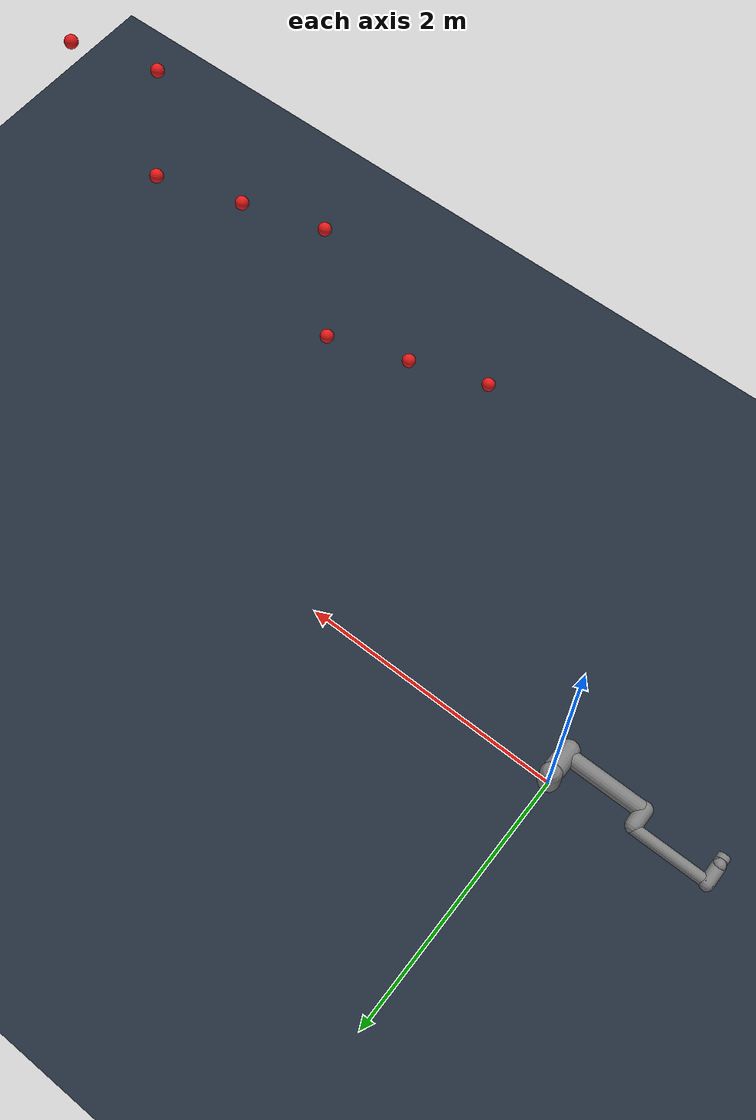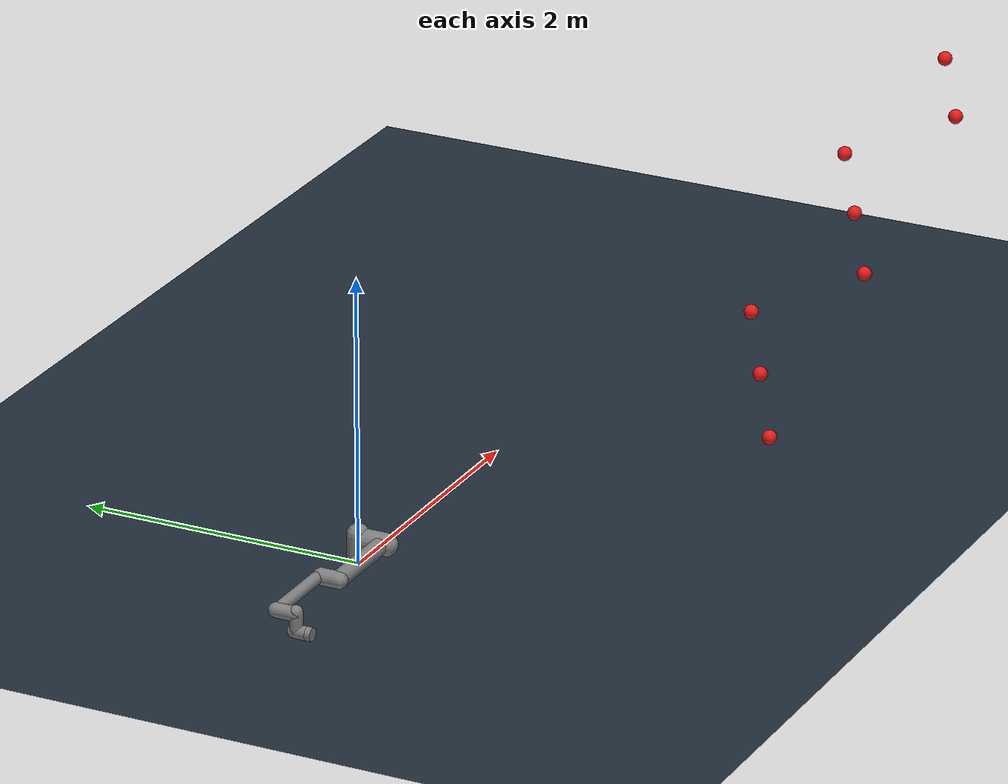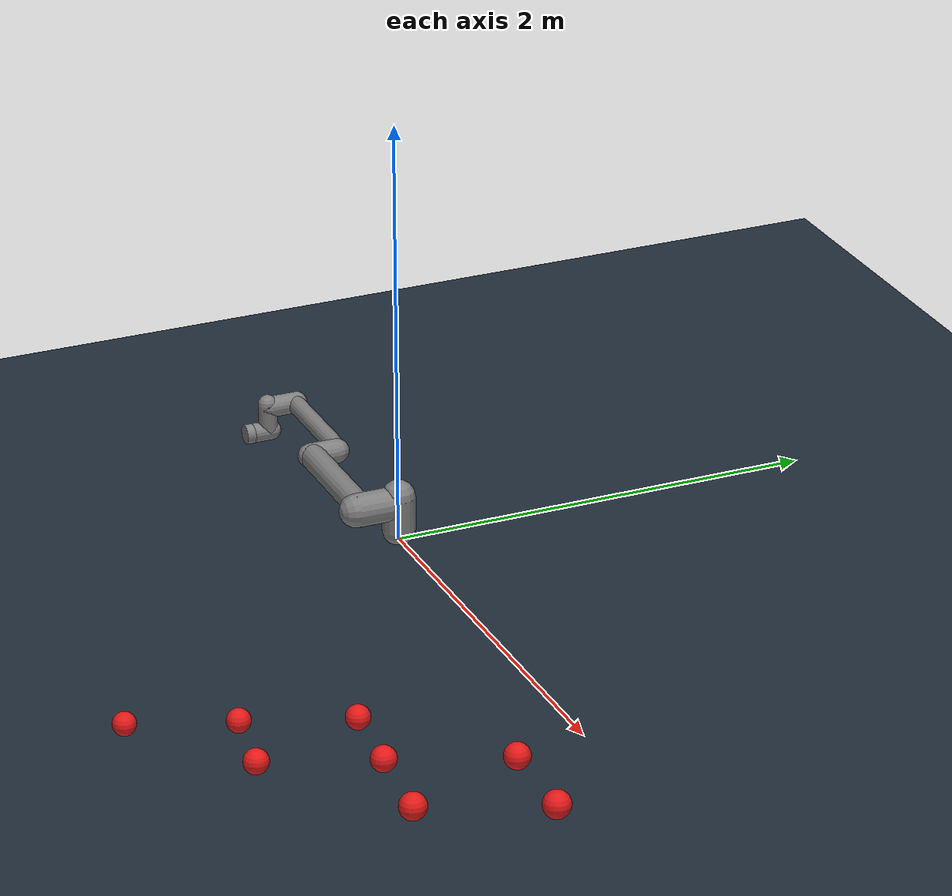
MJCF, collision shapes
<mujoco model="robot_free_fall">
  <compiler angle="radian" meshdir="mujoco_menagerie/universal_robots_ur10e/assets" autolimits="true"/>

  <option integrator="implicitfast" timestep="0.002"/>

  <statistic center="0.4 0 0.4" extent="1.5"/>

  <visual>
    <headlight diffuse="0.6 0.6 0.6" ambient="0.3 0.3 0.3" specular="0 0 0"/>
    <rgba haze="0.15 0.25 0.35 1"/>
    <global azimuth="120" elevation="-20" offwidth="1280" offheight="720"/>
  </visual>

  <default>
    <default class="ur10e">
      <material specular="0.5" shininess="0.25"/>
      <joint axis="0 1 0" range="-6.28319 6.28319" armature="0.1"/>
      <default class="size4">
        <joint damping="10"/>
      </default>
      <default class="size3">
        <joint damping="5"/>
        <default class="size3_limited">
          <joint range="-3.1415 3.1415"/>
        </default>
      </default>
      <default class="size2">
        <joint damping="2"/>
      </default>
      <default class="visual">
        <geom type="mesh" contype="0" conaffinity="0" group="2"/>
      </default>
      <default class="collision">
        <geom type="capsule" group="3"/>
        <default class="eef_collision">
          <geom type="cylinder"/>
        </default>
      </default>
      <site size="0.001" rgba="0.5 0.5 0.5 0.3" group="4"/>
    </default>
    <default class="fruit">
      <geom type="sphere" size="0.05" mass="0.1" friction="0.5 0.5 0.5"/>
    </default>
  </default>

  <asset>
    <texture type="skybox" builtin="gradient" rgb1="0.1 0.15 0.3" rgb2="0 0 0" width="512" height="3072"/>
    <texture type="2d" name="groundplane" builtin="checker" mark="edge" rgb1="0.15 0.2 0.25" rgb2="0.1 0.15 0.2"
      markrgb="0.3 0.3 0.3" width="300" height="300"/>
    <material name="groundplane" texture="groundplane" texuniform="true" texrepeat="5 5" reflectance="0.2"/>

    <!-- Robot meshes -->
    <material class="ur10e" name="black" rgba="0.033 0.033 0.033 1"/>
    <material class="ur10e" name="jointgray" rgba="0.278 0.278 0.278 1"/>
    <material class="ur10e" name="linkgray" rgba="0.82 0.82 0.82 1"/>
    <material class="ur10e" name="urblue" rgba="0.49 0.678 0.8 1"/>

    <mesh file="base_0.obj"/>
    <mesh file="base_1.obj"/>
    <mesh file="shoulder_0.obj"/>
    <mesh file="shoulder_1.obj"/>
    <mesh file="shoulder_2.obj"/>
    <mesh file="upperarm_0.obj"/>
    <mesh file="upperarm_1.obj"/>
    <mesh file="upperarm_2.obj"/>
    <mesh file="upperarm_3.obj"/>
    <mesh file="forearm_0.obj"/>
    <mesh file="forearm_1.obj"/>
    <mesh file="forearm_2.obj"/>
    <mesh file="forearm_3.obj"/>
    <mesh file="wrist1_0.obj"/>
    <mesh file="wrist1_1.obj"/>
    <mesh file="wrist1_2.obj"/>
    <mesh file="wrist2_0.obj"/>
    <mesh file="wrist2_1.obj"/>
    <mesh file="wrist2_2.obj"/>
    <mesh file="wrist3.obj"/>
  </asset>

  <worldbody>
    <light pos="0 0 3" dir="0 0 -1" directional="true" diffuse="0.8 0.8 0.8"/>
    <light pos="2 2 2" dir="-1 -1 -1" diffuse="0.3 0.3 0.3"/>
    <geom name="floor" size="0 0 0.05" type="plane" material="groundplane"/>

    <!-- UR10e Robot -->
    <body name="base" quat="0 0 0 -1" childclass="ur10e">
      <inertial mass="4.0" pos="0 0 0" diaginertia="0.0061063308908 0.0061063308908 0.01125"/>
      <geom mesh="base_0" material="black" class="visual"/>
      <geom mesh="base_1" material="jointgray" class="visual"/>
      <body name="shoulder_link" pos="0 0 0.181">
        <inertial pos="0 0 0" mass="7.778" diaginertia="0.0314743 0.0314743 0.0218756"/>
        <joint name="shoulder_pan_joint" class="size4" axis="0 0 1"/>
        <geom mesh="shoulder_0" material="urblue" class="visual"/>
        <geom mesh="shoulder_1" material="black" class="visual"/>
        <geom mesh="shoulder_2" material="jointgray" class="visual"/>
        <geom class="collision" size="0.078 0.08" pos="0 0 -0.05"/>
        <body name="upper_arm_link" pos="0 0.176 0" quat="1 0 1 0">
          <inertial pos="0 0 0.3065" mass="12.93" diaginertia="0.423074 0.423074 0.0363656"/>
          <joint name="shoulder_lift_joint" class="size4"/>
          <geom mesh="upperarm_0" material="black" class="visual"/>
          <geom mesh="upperarm_1" material="jointgray" class="visual"/>
          <geom mesh="upperarm_2" material="urblue" class="visual"/>
          <geom mesh="upperarm_3" material="linkgray" class="visual"/>
          <geom class="collision" pos="0 -0.05 0" quat="1 1 0 0" size="0.078 0.08"/>
          <geom class="collision" size="0.06 0.3" pos="0 0 0.3"/>
          <body name="forearm_link" pos="0 -0.137 0.613">
            <inertial pos="0 0 0.2855" mass="3.87" diaginertia="0.11059 0.11059 0.0108844"/>
            <joint name="elbow_joint" class="size3_limited"/>
            <geom mesh="forearm_0" material="urblue" class="visual"/>
            <geom mesh="forearm_1" material="black" class="visual"/>
            <geom mesh="forearm_2" material="jointgray" class="visual"/>
            <geom mesh="forearm_3" material="linkgray" class="visual"/>
            <geom class="collision" pos="0 0.08 0" quat="1 1 0 0" size="0.058 0.065"/>
            <geom class="collision" size="0.043 0.28" pos="0 0 0.29"/>
            <body name="wrist_1_link" pos="0 0 0.571" quat="1 0 1 0">
              <inertial pos="0 0.135 0" quat="0.5 0.5 -0.5 0.5" mass="1.96" diaginertia="0.0055125 0.00510825 0.00510825"/>
              <joint name="wrist_1_joint" class="size2"/>
              <geom mesh="wrist1_0" material="black" class="visual"/>
              <geom mesh="wrist1_1" material="urblue" class="visual"/>
              <geom mesh="wrist1_2" material="jointgray" class="visual"/>
              <geom class="collision" pos="0 0.06 0" quat="1 1 0 0" size="0.05 0.07"/>
              <body name="wrist_2_link" pos="0 0.135 0">
                <inertial pos="0 0 0.12" quat="0.5 0.5 -0.5 0.5" mass="1.96" diaginertia="0.0055125 0.00510825 0.00510825"/>
                <joint name="wrist_2_joint" axis="0 0 1" class="size2"/>
                <geom mesh="wrist2_0" material="black" class="visual"/>
                <geom mesh="wrist2_1" material="urblue" class="visual"/>
                <geom mesh="wrist2_2" material="jointgray" class="visual"/>
                <geom class="collision" size="0.046 0.065" pos="0 0 0.05"/>
                <geom class="collision" pos="0 0.028 0.12" quat="1 1 0 0" size="0.046 0.043"/>
                <body name="wrist_3_link" pos="0 0 0.12">
                  <inertial pos="0 0.092 0" quat="0 1 -1 0" mass="0.202" diaginertia="0.000204525 0.000144346 0.000144346"/>
                  <joint name="wrist_3_joint" class="size2"/>
                  <geom material="linkgray" mesh="wrist3" class="visual"/>
                  <geom class="eef_collision" pos="0 0.097 0" quat="1 1 0 0" size="0.046 0.02"/>
                  <site name="eef_site" pos="0 0.15 0" size="0.02" rgba="1 0 0 0.3"/>
                </body>
              </body>
            </body>
          </body>
        </body>
      </body>
    </body>

    <!-- Fruit balls -->

    <body name="fruit_0" pos="2.0 -2.0 0.5">
      <freejoint name="fruit_0_joint"/>
      <geom name="fruit_0_geom" class="fruit" rgba="0.9 0.1 0.1 1"/>
    </body>
    <body name="fruit_1" pos="2.5 -1.7 0.7">
      <freejoint name="fruit_1_joint"/>
      <geom name="fruit_1_geom" class="fruit" rgba="0.9 0.1 0.1 1"/>
    </body>
    <body name="fruit_2" pos="3.0 -1.4 0.9">
      <freejoint name="fruit_2_joint"/>
      <geom name="fruit_2_geom" class="fruit" rgba="0.9 0.1 0.1 1"/>
    </body>
    <body name="fruit_3" pos="3.5 -2.0 1.1">
      <freejoint name="fruit_3_joint"/>
      <geom name="fruit_3_geom" class="fruit" rgba="0.9 0.1 0.1 1"/>
    </body>
    <body name="fruit_4" pos="4.0 -1.7 1.3">
      <freejoint name="fruit_4_joint"/>
      <geom name="fruit_4_geom" class="fruit" rgba="0.9 0.1 0.1 1"/>
    </body>
    <body name="fruit_5" pos="4.5 -1.4 1.5">
      <freejoint name="fruit_5_joint"/>
      <geom name="fruit_5_geom" class="fruit" rgba="0.9 0.1 0.1 1"/>
    </body>
    <body name="fruit_6" pos="5.0 -2.0 1.7000000000000002">
      <freejoint name="fruit_6_joint"/>
      <geom name="fruit_6_geom" class="fruit" rgba="0.9 0.1 0.1 1"/>
    </body>
    <body name="fruit_7" pos="5.5 -1.7 1.9000000000000001">
      <freejoint name="fruit_7_joint"/>
      <geom name="fruit_7_geom" class="fruit" rgba="0.9 0.1 0.1 1"/>
    </body>

  </worldbody>

  <actuator>
    <motor name="shoulder_pan" joint="shoulder_pan_joint" gear="1" ctrllimited="true" ctrlrange="-330 330"/>
    <motor name="shoulder_lift" joint="shoulder_lift_joint" gear="1" ctrllimited="true" ctrlrange="-330 330"/>
    <motor name="elbow" joint="elbow_joint" gear="1" ctrllimited="true" ctrlrange="-150 150"/>
    <motor name="wrist_1" joint="wrist_1_joint" gear="1" ctrllimited="true" ctrlrange="-56 56"/>
    <motor name="wrist_2" joint="wrist_2_joint" gear="1" ctrllimited="true" ctrlrange="-56 56"/>
    <motor name="wrist_3" joint="wrist_3_joint" gear="1" ctrllimited="true" ctrlrange="-56 56"/>
  </actuator>

  <keyframe>
    <key name="home" qpos="-1.5708 -1.5708 1.5708 -1.5708 -1.5708 0"/>
  </keyframe>
</mujoco>
